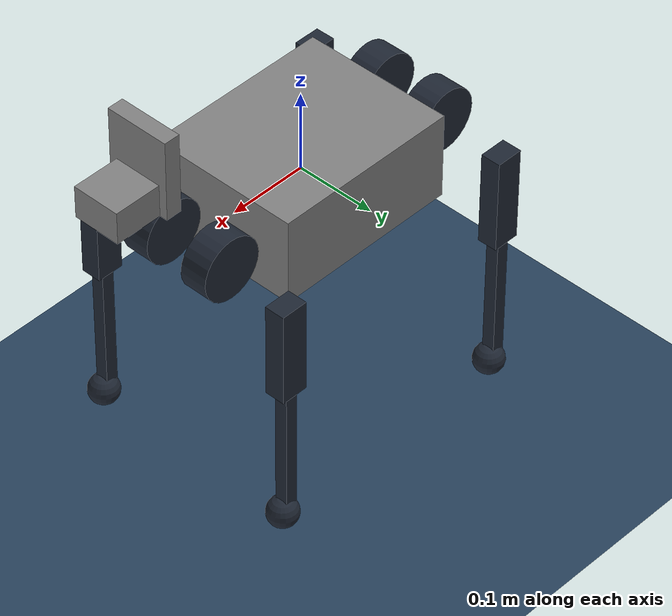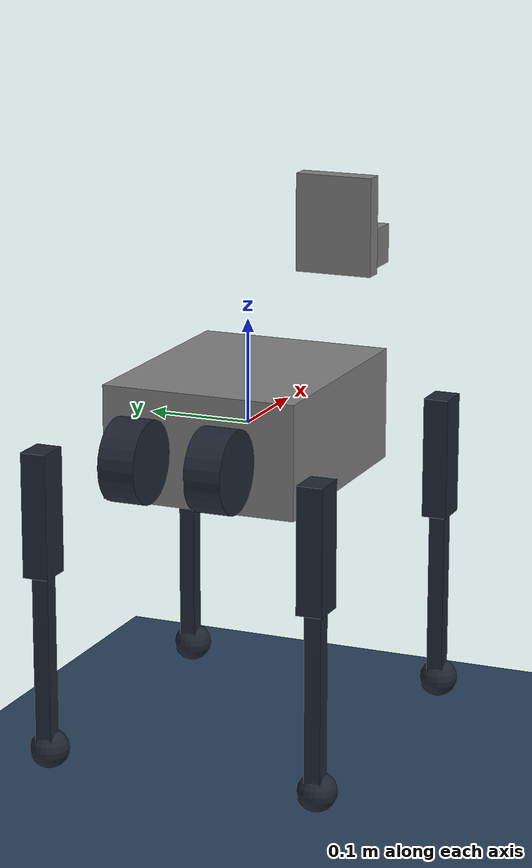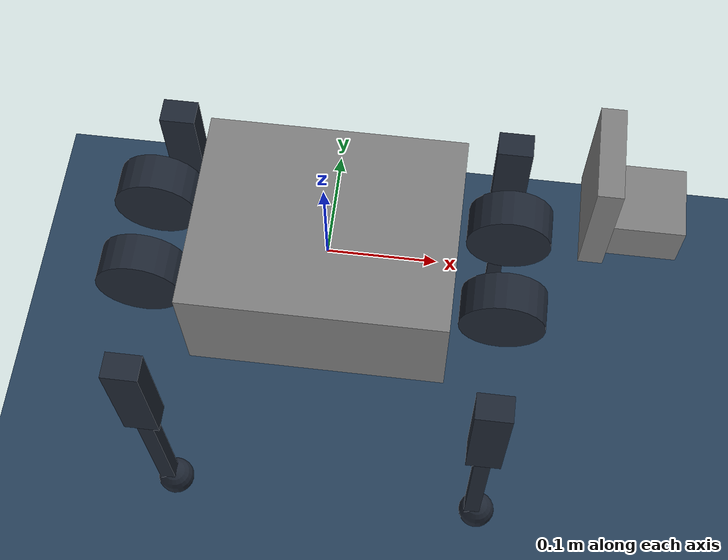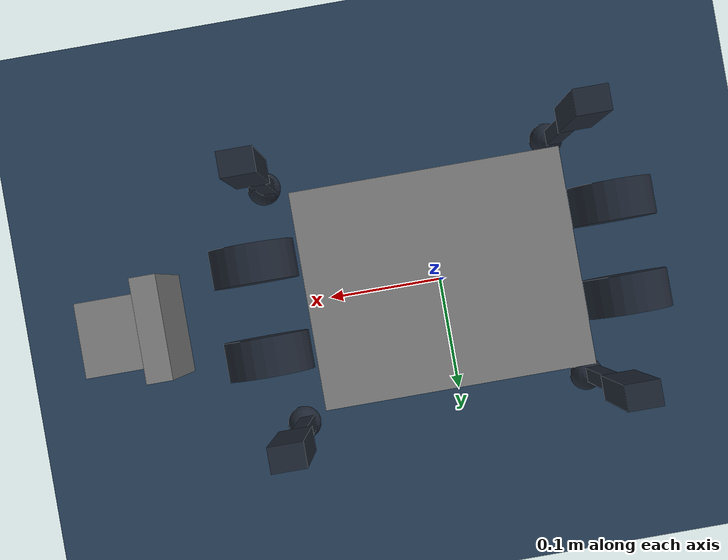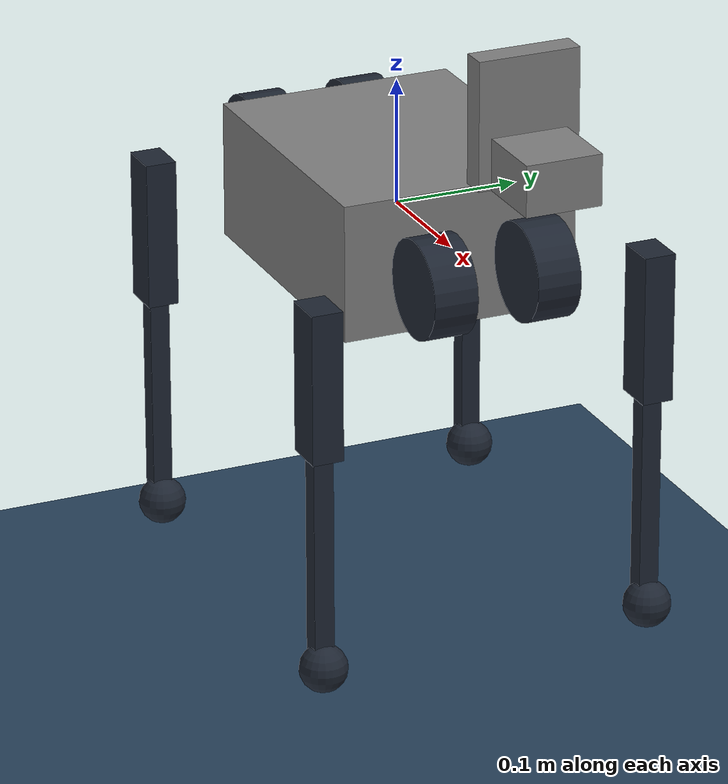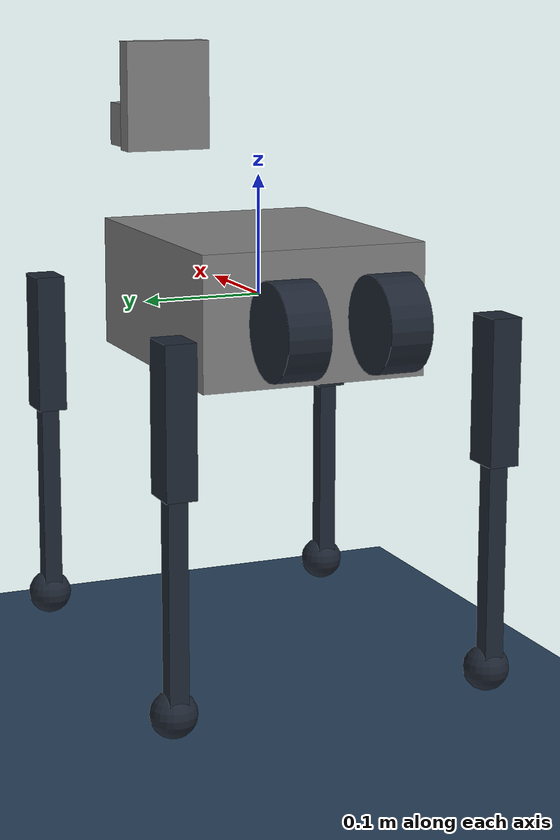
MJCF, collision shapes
<mujoco model="cyberdog2_description">
    <compiler angle="radian" meshdir="/home/yuchen/usetest/RL/cyberdog_gym/legged_gym/legged_gym/resources/robots/cyberdog2/meshes/" />
    <size njmax="500" nconmax="100" />
    <asset>
        <mesh name="body" file="body.stl" />
        <mesh name="abad" file="abad.stl" />
        <mesh name="hip_mirror" file="hip_mirror.stl" />
        <mesh name="knee" file="knee.stl" />
        <mesh name="hip" file="hip.stl" />
        <texture type="skybox" builtin="gradient" rgb1=".3 .5 .7" rgb2="0 0 0" width="512" height="512"/>
        <texture name="grid" type="2d" builtin="checker" width="512" height="512" rgb1=".1 .2 .3" rgb2=".2 .3 .4"/>
        <material name="grid" texture="grid" texrepeat="1 1" texuniform="true" reflectance=".2"/>
    </asset>

    <worldbody>
        <geom name="floor" pos="0 0 -0.4" size="0 0 0.05" type="plane" material="grid" condim="3"/>
        <light castshadow="false" directional='true' diffuse='.3 .3 .3' specular='0.3 0.3 0.3' pos='-1 -1 1'
               dir='1 1 -1'/>
        <light directional='true' diffuse='.3 .3 .3' specular='0.3 0.3 0.3' pos='1 -1 1' dir='-1 1 -1'/>
        <light castshadow="false" directional='true' diffuse='.3 .3 .3' specular='0.3 0.3 0.3' pos='0 1 1'
               dir='0 -1 -1'/>

        <body name="trunk" pos="0 0 0">
            <inertial pos="0.044075 -0.000223049 0.0236751" quat="0.572271 0.405334 0.392843 0.594881" mass="4.3724" diaginertia="0.071116 0.0701858 0.0163066" />
            <joint name="floating_base_joint" type="free" />
            <geom type="mesh" contype="0" conaffinity="0" group="1" mesh="body" />
            <geom size="0.118 0.095 0.0545" type="box" />
            <geom size="0.038 0.03 0.02" pos="0.256 0 0.12" type="box" />
            <geom size="0.01 0.04 0.05" pos="0.225 0 0.15" type="box" />
            <site name="imu_site" pos="0 0 0" size="0.01" rgba="1 0 0 0"/>
            <body name="FL_hip" pos="0.164 0.042 0">
                <inertial pos="-0.00392 0.015 -0.000306" quat="0.413351 0.436967 0.557781 0.571911" mass="0.354" diaginertia="0.00028385 0.000232925 0.000182225" />
                <joint name="FL_hip_joint" pos="0 0 0" axis="1 0 0" limited="true" range="-0.680678 0.680678" />
                <geom type="mesh" contype="0" conaffinity="0" group="1" rgba="0.12 0.15 0.2 1" mesh="abad" />
                <geom size="0.039 0.0175" quat="0.707107 0.707107 0 0" type="cylinder" rgba="0.12 0.15 0.2 1" />
                <body name="FL_thigh" pos="0 0.094 0">
                    <inertial pos="-0.00212 -0.0212 -0.0184" quat="0.803529 0.130899 -0.0570388 0.577887" mass="0.482" diaginertia="0.00104386 0.00100885 0.000287289" />
                    <joint name="FL_thigh_joint" pos="0 0 0" axis="0 1 0" limited="true" range="-1.32645 2.79253" />
                    <geom type="mesh" contype="0" conaffinity="0" group="1" rgba="0.12 0.15 0.2 1" mesh="hip" />
                    <geom size="0.06 0.0125 0.017" pos="0 0 -0.06" quat="0.707107 0 0.707107 0" type="box" rgba="0.12 0.15 0.2 1" />
                    <body name="FL_calf" pos="0 0 -0.12">
                        <inertial pos="0.00157271 -3.78302e-05 -0.106096" quat="0.708712 -0.0140225 -0.0146892 0.705206" mass="0.144731" diaginertia="0.000843553 0.00083835 1.87502e-05" />
                        <joint name="FL_calf_joint" pos="0 0 0" axis="0 1 0" limited="true" range="-2.53073 -0.523599" />
                        <geom type="mesh" contype="0" conaffinity="0" group="1" rgba="0.12 0.15 0.2 1" mesh="knee" />
                        <geom size="0.008 0.008 0.091705" pos="0 0 -0.091705" quat="0 0 1 0" type="box" rgba="0.12 0.15 0.2 1" />
                        <geom size="0.009" pos="0.0055 0 -0.17391" contype="0" conaffinity="0" group="1" rgba="0.12 0.15 0.2 1" />
                        <geom size="0.019" pos="0.0055 0 -0.17391" rgba="0.12 0.15 0.2 1" />
                    </body>
                </body>
            </body>
            <body name="FR_hip" pos="0.164 -0.042 0">
                <inertial pos="-0.00392 -0.015 -0.000306" quat="0.571911 0.557781 0.436967 0.413351" mass="0.354" diaginertia="0.00028385 0.000232925 0.000182225" />
                <joint name="FR_hip_joint" pos="0 0 0" axis="1 0 0" limited="true" range="-0.680678 0.680678" />
                <geom quat="0 1 0 0" type="mesh" contype="0" conaffinity="0" group="1" rgba="0.12 0.15 0.2 1" mesh="abad" />
                <geom size="0.039 0.0175" quat="0.707107 0.707107 0 0" type="cylinder" rgba="0.12 0.15 0.2 1" />
                <body name="FR_thigh" pos="0 -0.094 0">
                    <inertial pos="-0.00212 0.0212 -0.0184" quat="0.577887 -0.0570388 0.130899 0.803529" mass="0.482" diaginertia="0.00104386 0.00100885 0.000287289" />
                    <joint name="FR_thigh_joint" pos="0 0 0" axis="0 1 0" limited="true" range="-1.32645 2.79253" />
                    <geom type="mesh" contype="0" conaffinity="0" group="1" rgba="0.12 0.15 0.2 1" mesh="hip_mirror" />
                    <geom size="0.06 0.0125 0.017" pos="0 0 -0.06" quat="0.707107 0 0.707107 0" type="box" rgba="0.12 0.15 0.2 1" />
                    <body name="FR_calf" pos="0 0 -0.12">
                        <inertial pos="0.00157271 -3.78302e-05 -0.106096" quat="0.708712 -0.0140225 -0.0146892 0.705206" mass="0.144731" diaginertia="0.000843553 0.00083835 1.87502e-05" />
                        <joint name="FR_calf_joint" pos="0 0 0" axis="0 1 0" limited="true" range="-2.53073 -0.523599" />
                        <geom type="mesh" contype="0" conaffinity="0" group="1" rgba="0.12 0.15 0.2 1" mesh="knee" />
                        <geom size="0.008 0.008 0.091705" pos="0 0 -0.091705" quat="0 0 1 0" type="box" rgba="0.12 0.15 0.2 1" />
                        <geom size="0.009" pos="0.0055 0 -0.17391" contype="0" conaffinity="0" group="1" rgba="0.12 0.15 0.2 1" />
                        <geom size="0.019" pos="0.0055 0 -0.17391" rgba="0.12 0.15 0.2 1" />
                    </body>
                </body>
            </body>
            <body name="RL_hip" pos="-0.164 0.042 0">
                <inertial pos="0.00392 0.015 -0.000306" quat="0.557781 0.571911 0.413351 0.436967" mass="0.354" diaginertia="0.00028385 0.000232925 0.000182225" />
                <joint name="RL_hip_joint" pos="0 0 0" axis="1 0 0" limited="true" range="-0.680678 0.680678" />
                <geom quat="0 0 1 0" type="mesh" contype="0" conaffinity="0" group="1" rgba="0.12 0.15 0.2 1" mesh="abad" />
                <geom size="0.039 0.0175" quat="0.707107 0.707107 0 0" type="cylinder" rgba="0.12 0.15 0.2 1" />
                <body name="RL_thigh" pos="0 0.094 0">
                    <inertial pos="-0.00212 -0.0212 -0.0184" quat="0.803529 0.130899 -0.0570388 0.577887" mass="0.482" diaginertia="0.00104386 0.00100885 0.000287289" />
                    <joint name="RL_thigh_joint" pos="0 0 0" axis="0 1 0" limited="true" range="-0.977384 3.14159" />
                    <geom type="mesh" contype="0" conaffinity="0" group="1" rgba="0.12 0.15 0.2 1" mesh="hip" />
                    <geom size="0.06 0.0125 0.017" pos="0 0 -0.06" quat="0.707107 0 0.707107 0" type="box" rgba="0.12 0.15 0.2 1" />
                    <body name="RL_calf" pos="0 0 -0.12">
                        <inertial pos="0.00157271 -3.78302e-05 -0.106096" quat="0.708712 -0.0140225 -0.0146892 0.705206" mass="0.144731" diaginertia="0.000843553 0.00083835 1.87502e-05" />
                        <joint name="RL_calf_joint" pos="0 0 0" axis="0 1 0" limited="true" range="-2.53073 -0.523599" />
                        <geom type="mesh" contype="0" conaffinity="0" group="1" rgba="0.12 0.15 0.2 1" mesh="knee" />
                        <geom size="0.008 0.008 0.091705" pos="0 0 -0.091705" quat="0 0 1 0" type="box" rgba="0.12 0.15 0.2 1" />
                        <geom size="0.009" pos="0.0055 0 -0.17391" contype="0" conaffinity="0" group="1" rgba="0.12 0.15 0.2 1" />
                        <geom size="0.019" pos="0.0055 0 -0.17391" rgba="0.12 0.15 0.2 1" />
                    </body>
                </body>
            </body>
            <body name="RR_hip" pos="-0.164 -0.042 0">
                <inertial pos="0.00392 -0.015 -0.000306" quat="0.436967 0.413351 0.571911 0.557781" mass="0.354" diaginertia="0.00028385 0.000232925 0.000182225" />
                <joint name="RR_hip_joint" pos="0 0 0" axis="1 0 0" limited="true" range="-0.680678 0.680678" />
                <geom quat="0 0 0 -1" type="mesh" contype="0" conaffinity="0" group="1" rgba="0.12 0.15 0.2 1" mesh="abad" />
                <geom size="0.039 0.0175" quat="0.707107 0.707107 0 0" type="cylinder" rgba="0.12 0.15 0.2 1" />
                <body name="RR_thigh" pos="0 -0.094 0">
                    <inertial pos="-0.00212 0.0212 -0.0184" quat="0.577887 -0.0570388 0.130899 0.803529" mass="0.482" diaginertia="0.00104386 0.00100885 0.000287289" />
                    <joint name="RR_thigh_joint" pos="0 0 0" axis="0 1 0" limited="true" range="-0.977384 3.14159" />
                    <geom type="mesh" contype="0" conaffinity="0" group="1" rgba="0.12 0.15 0.2 1" mesh="hip_mirror" />
                    <geom size="0.06 0.0125 0.017" pos="0 0 -0.06" quat="0.707107 0 0.707107 0" type="box" rgba="0.12 0.15 0.2 1" />
                    <body name="RR_calf" pos="0 0 -0.12">
                        <inertial pos="0.00157271 -3.78302e-05 -0.106096" quat="0.708712 -0.0140225 -0.0146892 0.705206" mass="0.144731" diaginertia="0.000843553 0.00083835 1.87502e-05" />
                        <joint name="RR_calf_joint" pos="0 0 0" axis="0 1 0" limited="true" range="-2.53073 -0.523599" />
                        <geom type="mesh" contype="0" conaffinity="0" group="1" rgba="0.12 0.15 0.2 1" mesh="knee" />
                        <geom size="0.008 0.008 0.091705" pos="0 0 -0.091705" quat="0 0 1 0" type="box" rgba="0.12 0.15 0.2 1" />
                        <geom size="0.009" pos="0.0055 0 -0.17391" contype="0" conaffinity="0" group="1" rgba="0.12 0.15 0.2 1" />
                        <geom size="0.019" pos="0.0055 0 -0.17391" rgba="0.12 0.15 0.2 1" />
                    </body>
                </body>
            </body>
        </body>
    </worldbody>

    <visual>
        <map fogstart="1.5" fogend="5" force="0.1" znear="0.1"/>
        <quality shadowsize="4096" offsamples="4"/>
        <headlight ambient="0.4 0.4 0.4"/>
    </visual>

    <sensor>
        <framequat name="orientation" objtype="site" objname="imu_site"/>
        <frameangvel name="angular-velocity" objtype="site" objname="imu_site"/>
        <framelinvel name="linear-velocity" objtype="site" objname="imu_site"/>
    </sensor>

    <actuator>
        <motor name="FL_hip_joint" joint="FL_hip_joint" gear="1" ctrllimited="true" ctrlrange="-12 12"/>
        <motor name="FL_thigh_joint" joint="FL_thigh_joint" gear="1" ctrllimited="true" ctrlrange="-12 12"/>
        <motor name="FL_calf_joint" joint="FL_calf_joint" gear="1" ctrllimited="true" ctrlrange="-12 12"/>

        <motor name="FR_hip_joint" joint="FR_hip_joint" gear="1" ctrllimited="true" ctrlrange="-12 12"/>
        <motor name="FR_thigh_joint" joint="FR_thigh_joint" gear="1" ctrllimited="true" ctrlrange="-12 12"/>
        <motor name="FR_calf_joint" joint="FR_calf_joint" gear="1" ctrllimited="true" ctrlrange="-12 12"/>

        <motor name="RL_hip_joint" joint="RL_hip_joint" gear="1" ctrllimited="true" ctrlrange="-12 12"/>
        <motor name="RL_thigh_joint" joint="RL_thigh_joint" gear="1" ctrllimited="true" ctrlrange="-12 12"/>
        <motor name="RL_calf_joint" joint="RL_calf_joint" gear="1" ctrllimited="true" ctrlrange="-12 12"/>

        <motor name="RR_hip_joint" joint="RR_hip_joint" gear="1" ctrllimited="true" ctrlrange="-12 12"/>
        <motor name="RR_thigh_joint" joint="RR_thigh_joint" gear="1" ctrllimited="true" ctrlrange="-12 12"/>
        <motor name="RR_calf_joint" joint="RR_calf_joint" gear="1" ctrllimited="true" ctrlrange="-12 12"/>

    </actuator>

</mujoco>
